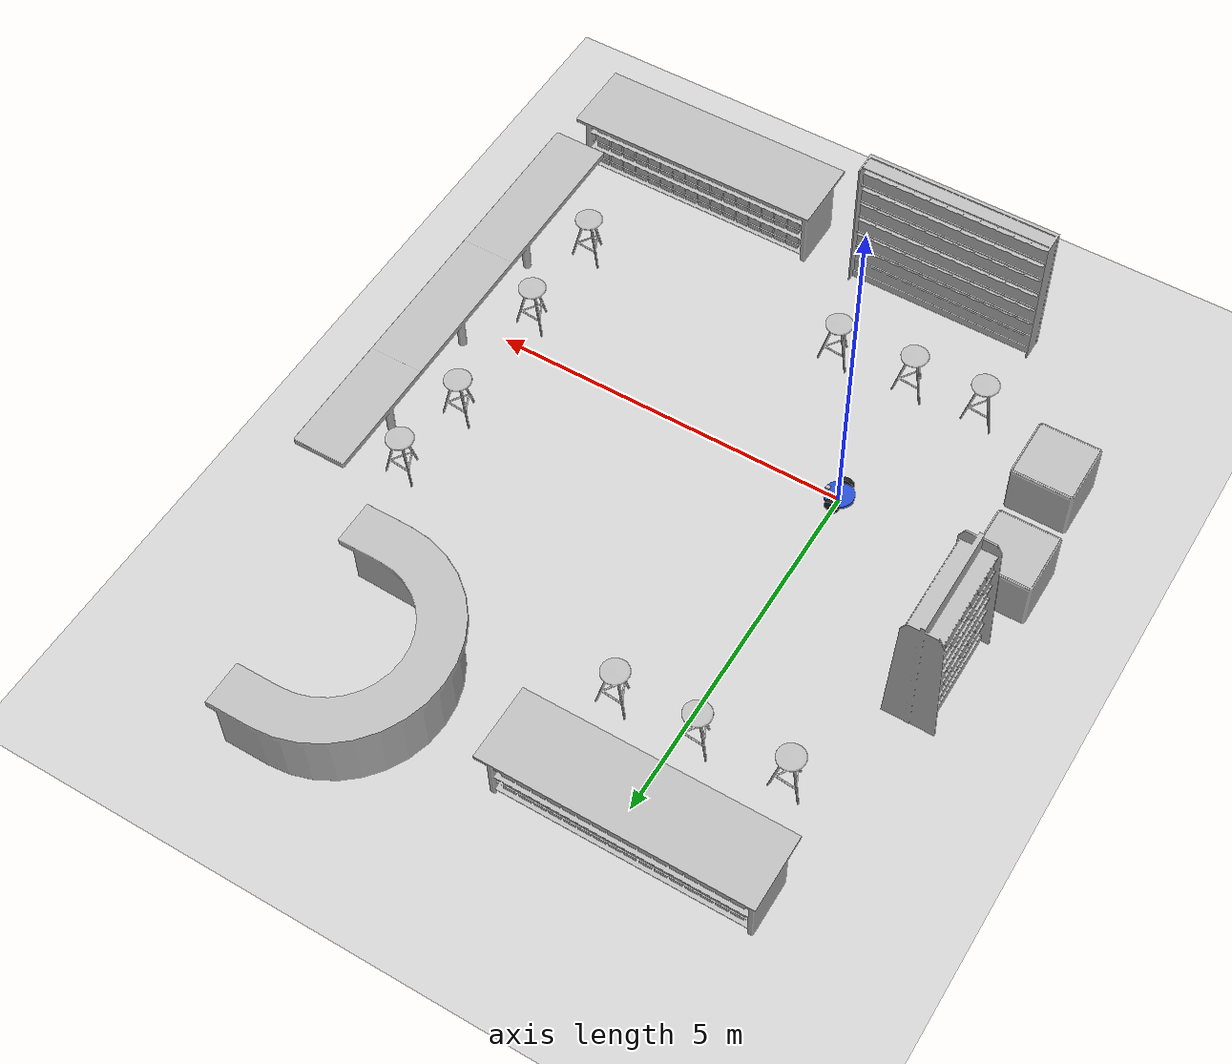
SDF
<sdf version="1.7">
 <world name="default">
  <light name="sun" type="directional">
   <pose>0 0 10 0 -0 0</pose>
   <diffuse>0.8 0.8 0.8 1</diffuse>
   <specular>0.2 0.2 0.2 1</specular>
   <attenuation>
    <range>1000</range>
    <constant>0.9</constant>
    <linear>0.01</linear>
    <quadratic>0.001</quadratic>
   </attenuation>
   <direction>-0.5 0.1 -0.9</direction>
   <spot><inner_angle>0</inner_angle><outer_angle>0</outer_angle><falloff>0</falloff></spot>
  </light>
  <model name="ground_plane">
   <static>1</static>
   <link name="link">
    <collision name="collision">
     <geometry><plane><normal>0 0 1</normal><size>100 100</size></plane></geometry>
     <surface>
      <contact><collide_bitmask>65535</collide_bitmask></contact>
      <friction><ode><mu>100</mu><mu2>50</mu2></ode></friction>
     </surface>
    </collision>
    <visual name="visual">
     <cast_shadows>0</cast_shadows>
     <geometry><plane><normal>0 0 1</normal><size>100 100</size></plane></geometry>
     <material>
      <script><uri>file://media/materials/scripts/gazebo.material</uri><name>Gazebo/Grey</name></script>
     </material>
    </visual>
   </link>
  </model>
  <gravity>0 0 -9.8</gravity>
  <magnetic_field>6e-06 2.3e-05 -4.2e-05</magnetic_field>
  <atmosphere type="adiabatic"/>
  <physics type="ode">
   <max_step_size>0.001</max_step_size>
   <real_time_factor>1</real_time_factor>
   <real_time_update_rate>1000</real_time_update_rate>
  </physics>
  <scene><ambient>0.4 0.4 0.4 1</ambient><background>0.7 0.7 0.7 1</background><shadows>1</shadows></scene>
  <spherical_coordinates>
   <surface_model>EARTH_WGS84</surface_model>
   <latitude_deg>0</latitude_deg>
   <longitude_deg>0</longitude_deg>
   <elevation>0</elevation>
   <heading_deg>0</heading_deg>
  </spherical_coordinates>
  <model name="auto_robot">
   <link name="chassis">
    <inertial>
     <pose>0 0 0.1 0 -0 0</pose>
     <mass>10</mass>
     <inertia>
      <ixx>0.500001</ixx>
      <ixy>0</ixy>
      <ixz>9.59999e-08</ixz>
      <iyy>1</iyy>
      <iyz>0</iyz>
      <izz>0.100001</izz>
     </inertia>
    </inertial>
    <collision name="chassis_fixed_joint_lump__collision_collision">
     <geometry><cylinder><length>0.05</length><radius>0.2</radius></cylinder></geometry>
    </collision>
    <collision name="chassis_fixed_joint_lump__caster_collision_collision_1">
     <pose>-0.15 0 -0.05 0 -0 0</pose>
     <geometry><sphere><radius>0.05</radius></sphere></geometry>
    </collision>
    <collision name="chassis_fixed_joint_lump__caster_collision2_collision_2">
     <pose>0.15 0 -0.05 0 -0 0</pose>
     <geometry><sphere><radius>0.05</radius></sphere></geometry>
    </collision>
    <collision name="chassis_fixed_joint_lump__camera_link_collision_3">
     <pose>0.16 0 0.04 0 -0 0</pose>
     <geometry><box><size>0.05 0.05 0.05</size></box></geometry>
    </collision>
    <visual name="chassis_visual_visual">
     <geometry><cylinder><length>0.05</length><radius>0.2</radius></cylinder></geometry>
     <material>
      <script><name>Gazebo/Blue</name><uri>file://media/materials/scripts/gazebo.material</uri></script>
     </material>
    </visual>
    <visual name="chassis_fixed_joint_lump__caster_visual_visual_1">
     <pose>-0.15 0 -0.05 0 -0 0</pose>
     <geometry><sphere><radius>0.05</radius></sphere></geometry>
    </visual>
    <visual name="chassis_fixed_joint_lump__caster2_visual_visual_2">
     <pose>0.15 0 -0.05 0 -0 0</pose>
     <geometry><sphere><radius>0.05</radius></sphere></geometry>
    </visual>
    <visual name="chassis_fixed_joint_lump__camera_link_visual_3">
     <pose>0.16 0 0.04 0 -0 0</pose>
     <geometry><box><size>0.05 0.05 0.05</size></box></geometry>
    </visual>
    <sensor name="camera1" type="camera">
     <update_rate>30</update_rate>
     <camera name="head">
      <horizontal_fov>1.39626</horizontal_fov>
      <image><width>800</width><height>800</height><format>R8G8B8</format></image>
      <clip><near>0.02</near><far>300</far></clip>
      <noise><type>gaussian</type><mean>0</mean><stddev>0.007</stddev></noise>
     </camera>
     <plugin name="camera_controller" filename="libgazebo_ros_camera.so">
      <alwaysOn>1</alwaysOn>
      <updateRate>0.0</updateRate>
      <cameraName>rrbot/camera1</cameraName>
      <imageTopicName>image_raw</imageTopicName>
      <cameraInfoTopicName>camera_info</cameraInfoTopicName>
      <frameName>camera_link</frameName>
      <hackBaseline>0.07</hackBaseline>
      <distortionK1>0.0</distortionK1>
      <distortionK2>0.0</distortionK2>
      <distortionK3>0.0</distortionK3>
      <distortionT1>0.0</distortionT1>
      <distortionT2>0.0</distortionT2>
      <robotNamespace>/</robotNamespace>
     </plugin>
     <pose>0.16 0 0.04 0 -0 0</pose>
    </sensor>
   </link>
   <joint name="left_wheel_hinge" type="revolute">
    <pose relative_to="chassis">0 -0.2 0 0 -0 0</pose>
    <parent>chassis</parent>
    <child>left_wheel</child>
    <axis>
     <xyz>0 1 0</xyz>
     <limit><effort>100</effort><velocity>100</velocity><lower>-1e+16</lower><upper>1e+16</upper></limit>
     <dynamics><spring_reference>0</spring_reference><spring_stiffness>0</spring_stiffness></dynamics>
    </axis>
   </joint>
   <link name="left_wheel">
    <pose relative_to="left_wheel_hinge">0 0 0 0 -0 0</pose>
    <inertial>
     <pose>0 0 0 -0 1.5707 1.5707</pose>
     <mass>5</mass>
     <inertia><ixx>1</ixx><ixy>0</ixy><ixz>0</ixz><iyy>1</iyy><iyz>0</iyz><izz>1</izz></inertia>
    </inertial>
    <collision name="left_wheel_fixed_joint_lump__collision_collision">
     <pose>0 0 0 1.57089 1.57079 -3.14159</pose>
     <geometry><cylinder><length>0.05</length><radius>0.1</radius></cylinder></geometry>
    </collision>
    <visual name="left_wheel_visual_visual">
     <pose>0 0 0 1.57089 1.57079 -3.14159</pose>
     <geometry><cylinder><length>0.05</length><radius>0.1</radius></cylinder></geometry>
     <material>
      <script><name>Gazebo/Black</name><uri>file://media/materials/scripts/gazebo.material</uri></script>
     </material>
    </visual>
   </link>
   <joint name="right_wheel_hinge" type="revolute">
    <pose relative_to="chassis">0 0.2 0 0 -0 0</pose>
    <parent>chassis</parent>
    <child>right_wheel</child>
    <axis>
     <xyz>0 1 0</xyz>
     <limit><effort>100</effort><velocity>100</velocity><lower>-1e+16</lower><upper>1e+16</upper></limit>
     <dynamics><spring_reference>0</spring_reference><spring_stiffness>0</spring_stiffness></dynamics>
    </axis>
   </joint>
   <link name="right_wheel">
    <pose relative_to="right_wheel_hinge">0 0 0 0 -0 0</pose>
    <inertial>
     <pose>0 0 0 -0 1.5707 1.5707</pose>
     <mass>5</mass>
     <inertia><ixx>1</ixx><ixy>0</ixy><ixz>0</ixz><iyy>1</iyy><iyz>0</iyz><izz>1</izz></inertia>
    </inertial>
    <collision name="right_wheel_fixed_joint_lump__collision_collision">
     <pose>0 0 0 1.57089 1.57079 -3.14159</pose>
     <geometry><cylinder><length>0.05</length><radius>0.1</radius></cylinder></geometry>
    </collision>
    <visual name="right_wheel_visual_visual">
     <pose>0 0 0 1.57089 1.57079 -3.14159</pose>
     <geometry><cylinder><length>0.05</length><radius>0.1</radius></cylinder></geometry>
     <material>
      <script><name>Gazebo/Black</name><uri>file://media/materials/scripts/gazebo.material</uri></script>
     </material>
    </visual>
   </link>
   <static>0</static>
   <plugin name="differential_drive_controller" filename="libgazebo_ros_diff_drive.so">
    <legacyMode>0</legacyMode>
    <alwaysOn>1</alwaysOn>
    <updateRate>20</updateRate>
    <leftJoint>left_wheel_hinge</leftJoint>
    <rightJoint>right_wheel_hinge</rightJoint>
    <wheelSeparation>0.4</wheelSeparation>
    <wheelDiameter>0.1</wheelDiameter>
    <torque>20</torque>
    <commandTopic>cmd_vel</commandTopic>
    <odometryTopic>odom</odometryTopic>
    <odometryFrame>odom</odometryFrame>
    <robotBaseFrame>chassis</robotBaseFrame>
    <robotNamespace>/</robotNamespace>
   </plugin>
   <pose>-0.000194 -0.006399 0.1 2e-06 -0 0.001647</pose>
  </model>
  <model name="aws_robomaker_retail_BookshelfA_01">
   <link name="link">
    <inertial>
     <mass>50</mass>
     <inertia><ixx>27.7341</ixx><ixy>0</ixy><ixz>0</ixz><iyy>20.9361</iyy><iyz>0</iyz><izz>11.3596</izz></inertia>
    </inertial>
    <collision name="collision">
     <geometry>
      <mesh>
       <uri>file://models/aws_robomaker_retail_BookshelfA_01/meshes/aws_BookshelfA_01_collision.DAE</uri>
       <scale>1 1 1</scale>
      </mesh>
     </geometry>
    </collision>
    <visual name="visual">
     <geometry>
      <mesh><uri>file://models/aws_robomaker_retail_BookshelfA_01/meshes/aws_BookshelfA_01_visual.DAE</uri></mesh>
     </geometry>
     <meta><layer>1</layer></meta>
    </visual>
   </link>
   <static>1</static>
   <pose>-2.19538 1.64741 0 0 -0 0</pose>
  </model>
  <model name="aws_robomaker_retail_BookshelfB_01">
   <link name="link">
    <inertial>
     <mass>50</mass>
     <inertia><ixx>19.8742</ixx><ixy>0</ixy><ixz>0</ixz><iyy>49.1263</iyy><iyz>0</iyz><izz>30.2231</izz></inertia>
    </inertial>
    <collision name="collision">
     <geometry>
      <mesh>
       <uri>file://models/aws_robomaker_retail_BookshelfB_01/meshes/aws_BookshelfB_01_collision.DAE</uri>
       <scale>1 1 1</scale>
      </mesh>
     </geometry>
    </collision>
    <visual name="visual">
     <geometry>
      <mesh><uri>file://models/aws_robomaker_retail_BookshelfB_01/meshes/aws_BookshelfB_01_visual.DAE</uri></mesh>
     </geometry>
     <meta><layer>1</layer></meta>
    </visual>
   </link>
   <static>1</static>
   <pose>0.280984 -3.41471 0 0 -0 0</pose>
  </model>
  <model name="aws_robomaker_retail_ChairB_01">
   <link name="link">
    <inertial>
     <mass>3</mass>
     <inertia>
      <ixx>0.188185</ixx>
      <ixy>0</ixy>
      <ixz>0</ixz>
      <iyy>0.190617</iyy>
      <iyz>0</iyz>
      <izz>0.100999</izz>
     </inertia>
    </inertial>
    <collision name="collision">
     <geometry>
      <mesh>
       <uri>file://models/aws_robomaker_retail_ChairB_01/meshes/aws_ChairB_01_collision.DAE</uri>
       <scale>1 1 1</scale>
      </mesh>
     </geometry>
    </collision>
    <visual name="visual">
     <geometry>
      <mesh><uri>file://models/aws_robomaker_retail_ChairB_01/meshes/aws_ChairB_01_visual.DAE</uri></mesh>
     </geometry>
     <meta><layer>1</layer></meta>
    </visual>
   </link>
   <static>1</static>
   <pose>-0.942378 -2.00542 0 0 -0 0</pose>
  </model>
  <model name="aws_robomaker_retail_ChairB_01_0">
   <link name="link">
    <inertial>
     <mass>3</mass>
     <inertia>
      <ixx>0.188185</ixx>
      <ixy>0</ixy>
      <ixz>0</ixz>
      <iyy>0.190617</iyy>
      <iyz>0</iyz>
      <izz>0.100999</izz>
     </inertia>
    </inertial>
    <collision name="collision">
     <geometry>
      <mesh>
       <uri>file://models/aws_robomaker_retail_ChairB_01/meshes/aws_ChairB_01_collision.DAE</uri>
       <scale>1 1 1</scale>
      </mesh>
     </geometry>
    </collision>
    <visual name="visual">
     <geometry>
      <mesh><uri>file://models/aws_robomaker_retail_ChairB_01/meshes/aws_ChairB_01_visual.DAE</uri></mesh>
     </geometry>
     <meta><layer>1</layer></meta>
    </visual>
   </link>
   <static>1</static>
   <pose>0.040816 -1.9657 0 0 -0 0</pose>
  </model>
  <model name="aws_robomaker_retail_ChairB_01_1">
   <link name="link">
    <inertial>
     <mass>3</mass>
     <inertia>
      <ixx>0.188185</ixx>
      <ixy>0</ixy>
      <ixz>0</ixz>
      <iyy>0.190617</iyy>
      <iyz>0</iyz>
      <izz>0.100999</izz>
     </inertia>
    </inertial>
    <collision name="collision">
     <geometry>
      <mesh>
       <uri>file://models/aws_robomaker_retail_ChairB_01/meshes/aws_ChairB_01_collision.DAE</uri>
       <scale>1 1 1</scale>
      </mesh>
     </geometry>
    </collision>
    <visual name="visual">
     <geometry>
      <mesh><uri>file://models/aws_robomaker_retail_ChairB_01/meshes/aws_ChairB_01_visual.DAE</uri></mesh>
     </geometry>
     <meta><layer>1</layer></meta>
    </visual>
   </link>
   <static>1</static>
   <pose>1.11792 -1.93345 0 0 -0 0</pose>
  </model>
  <model name="aws_robomaker_retail_DeskA_01">
   <link name="link">
    <inertial>
     <mass>20</mass>
     <inertia><ixx>3.49717</ixx><ixy>0</ixy><ixz>0</ixz><iyy>23.5599</iyy><iyz>0</iyz><izz>23.5702</izz></inertia>
    </inertial>
    <collision name="collision">
     <geometry>
      <mesh>
       <uri>file://models/aws_robomaker_retail_DeskA_01/meshes/aws_DeskA_01_collision.DAE</uri>
       <scale>1 1 1</scale>
      </mesh>
     </geometry>
    </collision>
    <visual name="visual">
     <geometry>
      <mesh><uri>file://models/aws_robomaker_retail_DeskA_01/meshes/aws_DeskA_01_visual.DAE</uri></mesh>
     </geometry>
     <meta><layer>1</layer></meta>
    </visual>
   </link>
   <static>1</static>
   <pose>3.99715 -3.58839 0 0 -0 0</pose>
  </model>
  <model name="aws_robomaker_retail_DeskB_01">
   <link name="link">
    <inertial>
     <mass>50</mass>
     <inertia><ixx>154.884</ixx><ixy>0</ixy><ixz>0</ixz><iyy>7.48424</iyy><iyz>0</iyz><izz>152.099</izz></inertia>
    </inertial>
    <collision name="collision">
     <geometry>
      <mesh>
       <uri>file://models/aws_robomaker_retail_DeskB_01/meshes/aws_DeskB_01_collision.DAE</uri>
       <scale>1 1 1</scale>
      </mesh>
     </geometry>
    </collision>
    <visual name="visual">
     <geometry>
      <mesh><uri>file://models/aws_robomaker_retail_DeskB_01/meshes/aws_DeskB_01_visual.DAE</uri></mesh>
     </geometry>
     <meta><layer>1</layer></meta>
    </visual>
   </link>
   <static>1</static>
   <pose>5.46618 0.330606 0 0 -0 0</pose>
  </model>
  <model name="aws_robomaker_retail_ChairB_01_2">
   <link name="link">
    <inertial>
     <mass>3</mass>
     <inertia>
      <ixx>0.188185</ixx>
      <ixy>0</ixy>
      <ixz>0</ixz>
      <iyy>0.190617</iyy>
      <iyz>0</iyz>
      <izz>0.100999</izz>
     </inertia>
    </inertial>
    <collision name="collision">
     <geometry>
      <mesh>
       <uri>file://models/aws_robomaker_retail_ChairB_01/meshes/aws_ChairB_01_collision.DAE</uri>
       <scale>1 1 1</scale>
      </mesh>
     </geometry>
    </collision>
    <visual name="visual">
     <geometry>
      <mesh><uri>file://models/aws_robomaker_retail_ChairB_01/meshes/aws_ChairB_01_visual.DAE</uri></mesh>
     </geometry>
     <meta><layer>1</layer></meta>
    </visual>
   </link>
   <static>1</static>
   <pose>4.94335 2.47217 0 0 -0 0</pose>
  </model>
  <model name="aws_robomaker_retail_ChairB_01_3">
   <link name="link">
    <inertial>
     <mass>3</mass>
     <inertia>
      <ixx>0.188185</ixx>
      <ixy>0</ixy>
      <ixz>0</ixz>
      <iyy>0.190617</iyy>
      <iyz>0</iyz>
      <izz>0.100999</izz>
     </inertia>
    </inertial>
    <collision name="collision">
     <geometry>
      <mesh>
       <uri>file://models/aws_robomaker_retail_ChairB_01/meshes/aws_ChairB_01_collision.DAE</uri>
       <scale>1 1 1</scale>
      </mesh>
     </geometry>
    </collision>
    <visual name="visual">
     <geometry>
      <mesh><uri>file://models/aws_robomaker_retail_ChairB_01/meshes/aws_ChairB_01_visual.DAE</uri></mesh>
     </geometry>
     <meta><layer>1</layer></meta>
    </visual>
   </link>
   <static>1</static>
   <pose>4.83805 1.34304 0 0 -0 0</pose>
  </model>
  <model name="aws_robomaker_retail_ChairB_01_4">
   <link name="link">
    <inertial>
     <mass>3</mass>
     <inertia>
      <ixx>0.188185</ixx>
      <ixy>0</ixy>
      <ixz>0</ixz>
      <iyy>0.190617</iyy>
      <iyz>0</iyz>
      <izz>0.100999</izz>
     </inertia>
    </inertial>
    <collision name="collision">
     <geometry>
      <mesh>
       <uri>file://models/aws_robomaker_retail_ChairB_01/meshes/aws_ChairB_01_collision.DAE</uri>
       <scale>1 1 1</scale>
      </mesh>
     </geometry>
    </collision>
    <visual name="visual">
     <geometry>
      <mesh><uri>file://models/aws_robomaker_retail_ChairB_01/meshes/aws_ChairB_01_visual.DAE</uri></mesh>
     </geometry>
     <meta><layer>1</layer></meta>
    </visual>
   </link>
   <static>1</static>
   <pose>4.84842 -0.406978 0 0 -0 0</pose>
  </model>
  <model name="aws_robomaker_retail_ChairB_01_5">
   <link name="link">
    <inertial>
     <mass>3</mass>
     <inertia>
      <ixx>0.188185</ixx>
      <ixy>0</ixy>
      <ixz>0</ixz>
      <iyy>0.190617</iyy>
      <iyz>0</iyz>
      <izz>0.100999</izz>
     </inertia>
    </inertial>
    <collision name="collision">
     <geometry>
      <mesh>
       <uri>file://models/aws_robomaker_retail_ChairB_01/meshes/aws_ChairB_01_collision.DAE</uri>
       <scale>1 1 1</scale>
      </mesh>
     </geometry>
    </collision>
    <visual name="visual">
     <geometry>
      <mesh><uri>file://models/aws_robomaker_retail_ChairB_01/meshes/aws_ChairB_01_visual.DAE</uri></mesh>
     </geometry>
     <meta><layer>1</layer></meta>
    </visual>
   </link>
   <static>1</static>
   <pose>4.84638 -1.79529 0 0 -0 0</pose>
  </model>
  <model name="aws_robomaker_retail_BookshelfC_01">
   <link name="link">
    <inertial>
     <mass>50</mass>
     <inertia><ixx>5.5865</ixx><ixy>0</ixy><ixz>0</ixz><iyy>5.47324</iyy><iyz>0</iyz><izz>6.23277</izz></inertia>
    </inertial>
    <collision name="collision">
     <geometry>
      <mesh>
       <uri>file://models/aws_robomaker_retail_BookshelfC_01/meshes/aws_BookshelfC_01_collision.DAE</uri>
       <scale>1 1 1</scale>
      </mesh>
     </geometry>
    </collision>
    <visual name="visual">
     <geometry>
      <mesh><uri>file://models/aws_robomaker_retail_BookshelfC_01/meshes/aws_BookshelfC_01_visual.DAE</uri></mesh>
     </geometry>
     <meta><layer>1</layer></meta>
    </visual>
   </link>
   <static>1</static>
   <pose>-2.36728 0.031209 0 0 -0 0</pose>
  </model>
  <model name="aws_robomaker_retail_InfoDesk_01">
   <link name="link">
    <inertial>
     <mass>50</mass>
     <inertia><ixx>47.8386</ixx><ixy>0</ixy><ixz>0</ixz><iyy>25.3705</iyy><iyz>0</iyz><izz>63.5798</izz></inertia>
    </inertial>
    <collision name="collision">
     <geometry>
      <mesh>
       <uri>file://models/aws_robomaker_retail_InfoDesk_01/meshes/aws_InfoDesk_01_collision.DAE</uri>
       <scale>1 1 1</scale>
      </mesh>
     </geometry>
    </collision>
    <visual name="visual">
     <geometry>
      <mesh><uri>file://models/aws_robomaker_retail_InfoDesk_01/meshes/aws_InfoDesk_01_visual.DAE</uri></mesh>
     </geometry>
     <meta><layer>1</layer></meta>
    </visual>
   </link>
   <static>1</static>
   <pose>3.42883 5.19899 0 0 -0 0</pose>
  </model>
  <model name="aws_robomaker_retail_DeskA_01_0">
   <link name="link">
    <inertial>
     <mass>20</mass>
     <inertia><ixx>3.49717</ixx><ixy>0</ixy><ixz>0</ixz><iyy>23.5599</iyy><iyz>0</iyz><izz>23.5702</izz></inertia>
    </inertial>
    <collision name="collision">
     <geometry>
      <mesh>
       <uri>file://models/aws_robomaker_retail_DeskA_01/meshes/aws_DeskA_01_collision.DAE</uri>
       <scale>1 1 1</scale>
      </mesh>
     </geometry>
    </collision>
    <visual name="visual">
     <geometry>
      <mesh><uri>file://models/aws_robomaker_retail_DeskA_01/meshes/aws_DeskA_01_visual.DAE</uri></mesh>
     </geometry>
     <meta><layer>1</layer></meta>
    </visual>
   </link>
   <static>1</static>
   <pose>-0.240018 5.2677 0 0 -0 0</pose>
  </model>
  <model name="aws_robomaker_retail_BookshelfC_01_0">
   <link name="link">
    <inertial>
     <mass>50</mass>
     <inertia><ixx>5.5865</ixx><ixy>0</ixy><ixz>0</ixz><iyy>5.47324</iyy><iyz>0</iyz><izz>6.23277</izz></inertia>
    </inertial>
    <collision name="collision">
     <geometry>
      <mesh>
       <uri>file://models/aws_robomaker_retail_BookshelfC_01/meshes/aws_BookshelfC_01_collision.DAE</uri>
       <scale>1 1 1</scale>
      </mesh>
     </geometry>
    </collision>
    <visual name="visual">
     <geometry>
      <mesh><uri>file://models/aws_robomaker_retail_BookshelfC_01/meshes/aws_BookshelfC_01_visual.DAE</uri></mesh>
     </geometry>
     <meta><layer>1</layer></meta>
    </visual>
   </link>
   <static>1</static>
   <pose>-2.23601 -1.41556 0 0 -0 0</pose>
  </model>
  <model name="aws_robomaker_retail_ChairB_01_6">
   <link name="link">
    <inertial>
     <mass>3</mass>
     <inertia>
      <ixx>0.188185</ixx>
      <ixy>0</ixy>
      <ixz>0</ixz>
      <iyy>0.190617</iyy>
      <iyz>0</iyz>
      <izz>0.100999</izz>
     </inertia>
    </inertial>
    <collision name="collision">
     <geometry>
      <mesh>
       <uri>file://models/aws_robomaker_retail_ChairB_01/meshes/aws_ChairB_01_collision.DAE</uri>
       <scale>1 1 1</scale>
      </mesh>
     </geometry>
    </collision>
    <visual name="visual">
     <geometry>
      <mesh><uri>file://models/aws_robomaker_retail_ChairB_01/meshes/aws_ChairB_01_visual.DAE</uri></mesh>
     </geometry>
     <meta><layer>1</layer></meta>
    </visual>
   </link>
   <static>1</static>
   <pose>0.893546 3.93378 0 0 -0 0</pose>
  </model>
  <model name="aws_robomaker_retail_ChairB_01_7">
   <link name="link">
    <inertial>
     <mass>3</mass>
     <inertia>
      <ixx>0.188185</ixx>
      <ixy>0</ixy>
      <ixz>0</ixz>
      <iyy>0.190617</iyy>
      <iyz>0</iyz>
      <izz>0.100999</izz>
     </inertia>
    </inertial>
    <collision name="collision">
     <geometry>
      <mesh>
       <uri>file://models/aws_robomaker_retail_ChairB_01/meshes/aws_ChairB_01_collision.DAE</uri>
       <scale>1 1 1</scale>
      </mesh>
     </geometry>
    </collision>
    <visual name="visual">
     <geometry>
      <mesh><uri>file://models/aws_robomaker_retail_ChairB_01/meshes/aws_ChairB_01_visual.DAE</uri></mesh>
     </geometry>
     <meta><layer>1</layer></meta>
    </visual>
   </link>
   <static>1</static>
   <pose>-0.204763 3.92163 0 0 -0 0</pose>
  </model>
  <model name="aws_robomaker_retail_ChairB_01_8">
   <link name="link">
    <inertial>
     <mass>3</mass>
     <inertia>
      <ixx>0.188185</ixx>
      <ixy>0</ixy>
      <ixz>0</ixz>
      <iyy>0.190617</iyy>
      <iyz>0</iyz>
      <izz>0.100999</izz>
     </inertia>
    </inertial>
    <collision name="collision">
     <geometry>
      <mesh>
       <uri>file://models/aws_robomaker_retail_ChairB_01/meshes/aws_ChairB_01_collision.DAE</uri>
       <scale>1 1 1</scale>
      </mesh>
     </geometry>
    </collision>
    <visual name="visual">
     <geometry>
      <mesh><uri>file://models/aws_robomaker_retail_ChairB_01/meshes/aws_ChairB_01_visual.DAE</uri></mesh>
     </geometry>
     <meta><layer>1</layer></meta>
    </visual>
   </link>
   <static>1</static>
   <pose>-1.39483 3.86048 0 0 -0 0</pose>
  </model>
 </world>
</sdf>
